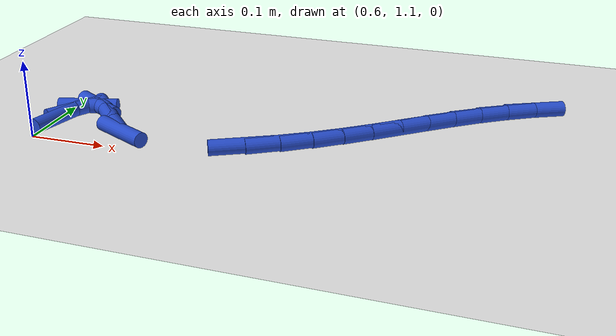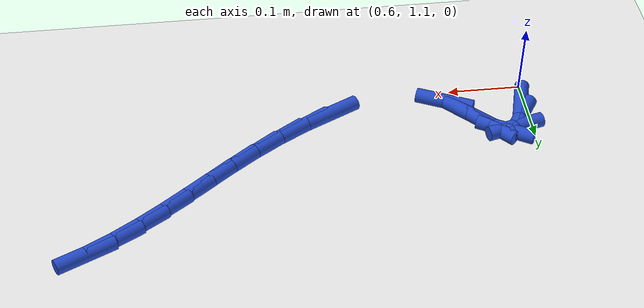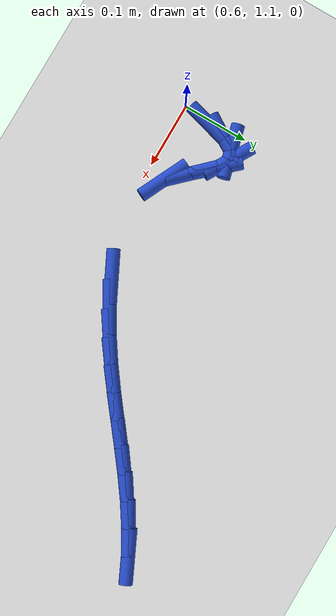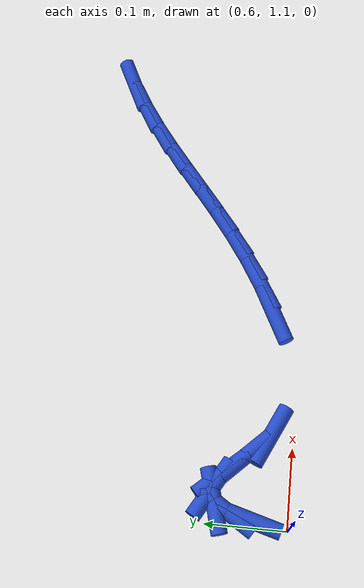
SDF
<sdf version="1.6">
 <world name="default">
  <model name="ground_plane">
   <static>1</static>
   <link name="link">
    <collision name="collision">
     <geometry><plane><normal>0 0 1</normal><size>100 100</size></plane></geometry>
     <surface><friction><ode><mu>100</mu><mu2>50</mu2></ode></friction></surface>
    </collision>
    <visual name="visual">
     <cast_shadows>0</cast_shadows>
     <geometry><plane><normal>0 0 1</normal><size>100 100</size></plane></geometry>
     <material>
      <script><uri>file://media/materials/scripts/gazebo.material</uri><name>Gazebo/WhiteGlow</name></script>
     </material>
    </visual>
   </link>
  </model>
  <model name="line">
   <link name="link_32">
    <pose>0.6088706500911311 1.146529710419681 0.01 0 1.57 1.3012448087792454</pose>
    <collision name="collision">
     <geometry><cylinder><radius>0.01</radius><length>0.08</length></cylinder></geometry>
    </collision>
    <visual name="visual">
     <material>
      <script><name>Gazebo/Blue</name><uri>file://media/materials/scripts/gazebo.material</uri></script>
     </material>
     <geometry><cylinder><radius>0.01</radius><length>0.08</length></cylinder></geometry>
    </visual>
   </link>
   <link name="link_33">
    <pose>0.6164554475760384 1.1739834704020728 0.01 0 1.57 1.0032479541702728</pose>
    <collision name="collision">
     <geometry><cylinder><radius>0.01</radius><length>0.08</length></cylinder></geometry>
    </collision>
    <visual name="visual">
     <material>
      <script><name>Gazebo/Blue</name><uri>file://media/materials/scripts/gazebo.material</uri></script>
     </material>
     <geometry><cylinder><radius>0.01</radius><length>0.08</length></cylinder></geometry>
    </visual>
   </link>
   <link name="link_34">
    <pose>0.6268991259828225 1.1903653226056932 0.01 0 1.57 0.2584251340858222</pose>
    <collision name="collision">
     <geometry><cylinder><radius>0.01</radius><length>0.08</length></cylinder></geometry>
    </collision>
    <visual name="visual">
     <material>
      <script><name>Gazebo/Blue</name><uri>file://media/materials/scripts/gazebo.material</uri></script>
     </material>
     <geometry><cylinder><radius>0.01</radius><length>0.08</length></cylinder></geometry>
    </visual>
   </link>
   <link name="link_35">
    <pose>0.6409073334320056 1.194068195168183 0.01 0 1.57 -0.5248349542645053</pose>
    <collision name="collision">
     <geometry><cylinder><radius>0.01</radius><length>0.08</length></cylinder></geometry>
    </collision>
    <visual name="visual">
     <material>
      <script><name>Gazebo/Blue</name><uri>file://media/materials/scripts/gazebo.material</uri></script>
     </material>
     <geometry><cylinder><radius>0.01</radius><length>0.08</length></cylinder></geometry>
    </visual>
   </link>
   <link name="link_36">
    <pose>0.6591857180441094 1.1834850162271835 0.01 0 1.57 -0.8353414293036994</pose>
    <collision name="collision">
     <geometry><cylinder><radius>0.01</radius><length>0.08</length></cylinder></geometry>
    </collision>
    <visual name="visual">
     <material>
      <script><name>Gazebo/Blue</name><uri>file://media/materials/scripts/gazebo.material</uri></script>
     </material>
     <geometry><cylinder><radius>0.01</radius><length>0.08</length></cylinder></geometry>
    </visual>
   </link>
   <link name="link_37">
    <pose>0.6824433980080781 1.1577799411605774 0.01 0 1.57 -0.798774468301952</pose>
    <collision name="collision">
     <geometry><cylinder><radius>0.01</radius><length>0.08</length></cylinder></geometry>
    </collision>
    <visual name="visual">
     <material>
      <script><name>Gazebo/Blue</name><uri>file://media/materials/scripts/gazebo.material</uri></script>
     </material>
     <geometry><cylinder><radius>0.01</radius><length>0.08</length></cylinder></geometry>
    </visual>
   </link>
   <link name="link_38">
    <pose>0.7114429305881919 1.1279940296547748 0.01 0 1.57 -0.4415822130064496</pose>
    <collision name="collision">
     <geometry><cylinder><radius>0.01</radius><length>0.08</length></cylinder></geometry>
    </collision>
    <visual name="visual">
     <material>
      <script><name>Gazebo/Blue</name><uri>file://media/materials/scripts/gazebo.material</uri></script>
     </material>
     <geometry><cylinder><radius>0.01</radius><length>0.08</length></cylinder></geometry>
    </visual>
   </link>
   <link name="link_42">
    <pose>0.8698767631484277 1.1346658720849254 0.01 0 1.57 0.46797613083560824</pose>
    <collision name="collision">
     <geometry><cylinder><radius>0.01</radius><length>0.08</length></cylinder></geometry>
    </collision>
    <visual name="visual">
     <material>
      <script><name>Gazebo/Blue</name><uri>file://media/materials/scripts/gazebo.material</uri></script>
     </material>
     <geometry><cylinder><radius>0.01</radius><length>0.08</length></cylinder></geometry>
    </visual>
   </link>
   <link name="link_43">
    <pose>0.9093059677840348 1.1545942761773187 0.01 0 1.57 0.5357757117277205</pose>
    <collision name="collision">
     <geometry><cylinder><radius>0.01</radius><length>0.08</length></cylinder></geometry>
    </collision>
    <visual name="visual">
     <material>
      <script><name>Gazebo/Blue</name><uri>file://media/materials/scripts/gazebo.material</uri></script>
     </material>
     <geometry><cylinder><radius>0.01</radius><length>0.08</length></cylinder></geometry>
    </visual>
   </link>
   <link name="link_44">
    <pose>0.9455546267833702 1.1761151757244634 0.01 0 1.57 0.5921940402596497</pose>
    <collision name="collision">
     <geometry><cylinder><radius>0.01</radius><length>0.08</length></cylinder></geometry>
    </collision>
    <visual name="visual">
     <material>
      <script><name>Gazebo/Blue</name><uri>file://media/materials/scripts/gazebo.material</uri></script>
     </material>
     <geometry><cylinder><radius>0.01</radius><length>0.08</length></cylinder></geometry>
    </visual>
   </link>
   <link name="link_45">
    <pose>0.9792349863080558 1.1987732322403784 0.01 0 1.57 0.634804874455717</pose>
    <collision name="collision">
     <geometry><cylinder><radius>0.01</radius><length>0.08</length></cylinder></geometry>
    </collision>
    <visual name="visual">
     <material>
      <script><name>Gazebo/Blue</name><uri>file://media/materials/scripts/gazebo.material</uri></script>
     </material>
     <geometry><cylinder><radius>0.01</radius><length>0.08</length></cylinder></geometry>
    </visual>
   </link>
   <link name="link_46">
    <pose>1.0110267850688366 1.2221878870657032 0.01 0 1.57 0.6611233290945785</pose>
    <collision name="collision">
     <geometry><cylinder><radius>0.01</radius><length>0.08</length></cylinder></geometry>
    </collision>
    <visual name="visual">
     <material>
      <script><name>Gazebo/Blue</name><uri>file://media/materials/scripts/gazebo.material</uri></script>
     </material>
     <geometry><cylinder><radius>0.01</radius><length>0.08</length></cylinder></geometry>
    </visual>
   </link>
   <link name="link_47">
    <pose>1.0416097617764586 1.2459785815410784 0.01 0 1.57 0.6695061817261639</pose>
    <collision name="collision">
     <geometry><cylinder><radius>0.01</radius><length>0.08</length></cylinder></geometry>
    </collision>
    <visual name="visual">
     <material>
      <script><name>Gazebo/Blue</name><uri>file://media/materials/scripts/gazebo.material</uri></script>
     </material>
     <geometry><cylinder><radius>0.01</radius><length>0.08</length></cylinder></geometry>
    </visual>
   </link>
   <link name="link_48">
    <pose>1.0716636551416667 1.2697647570071444 0.01 0 1.57 0.6591564189813733</pose>
    <collision name="collision">
     <geometry><cylinder><radius>0.01</radius><length>0.08</length></cylinder></geometry>
    </collision>
    <visual name="visual">
     <material>
      <script><name>Gazebo/Blue</name><uri>file://media/materials/scripts/gazebo.material</uri></script>
     </material>
     <geometry><cylinder><radius>0.01</radius><length>0.08</length></cylinder></geometry>
    </visual>
   </link>
   <link name="link_49">
    <pose>1.101868203875207 1.293165854804542 0.01 0 1.57 0.6301562417405734</pose>
    <collision name="collision">
     <geometry><cylinder><radius>0.01</radius><length>0.08</length></cylinder></geometry>
    </collision>
    <visual name="visual">
     <material>
      <script><name>Gazebo/Blue</name><uri>file://media/materials/scripts/gazebo.material</uri></script>
     </material>
     <geometry><cylinder><radius>0.01</radius><length>0.08</length></cylinder></geometry>
    </visual>
   </link>
   <link name="link_50">
    <pose>1.1329031466878245 1.3158013162739106 0.01 0 1.57 0.5835766661697965</pose>
    <collision name="collision">
     <geometry><cylinder><radius>0.01</radius><length>0.08</length></cylinder></geometry>
    </collision>
    <visual name="visual">
     <material>
      <script><name>Gazebo/Blue</name><uri>file://media/materials/scripts/gazebo.material</uri></script>
     </material>
     <geometry><cylinder><radius>0.01</radius><length>0.08</length></cylinder></geometry>
    </visual>
   </link>
   <link name="link_51">
    <pose>1.1654482222902647 1.337290582755891 0.01 0 1.57 0.5216161233795654</pose>
    <collision name="collision">
     <geometry><cylinder><radius>0.01</radius><length>0.08</length></cylinder></geometry>
    </collision>
    <visual name="visual">
     <material>
      <script><name>Gazebo/Blue</name><uri>file://media/materials/scripts/gazebo.material</uri></script>
     </material>
     <geometry><cylinder><radius>0.01</radius><length>0.08</length></cylinder></geometry>
    </visual>
   </link>
   <link name="link_52">
    <pose>1.2001831693932727 1.3572530955911235 0.01 0 1.57 0.4476283154227192</pose>
    <collision name="collision">
     <geometry><cylinder><radius>0.01</radius><length>0.08</length></cylinder></geometry>
    </collision>
    <visual name="visual">
     <material>
      <script><name>Gazebo/Blue</name><uri>file://media/materials/scripts/gazebo.material</uri></script>
     </material>
     <geometry><cylinder><radius>0.01</radius><length>0.08</length></cylinder></geometry>
    </visual>
   </link>
  </model>
 </world>
</sdf>
